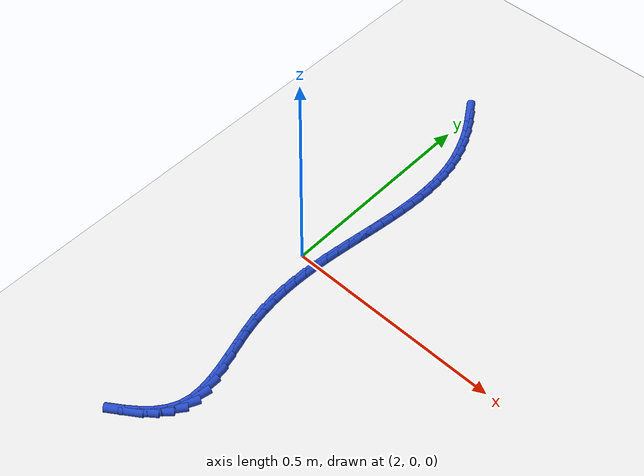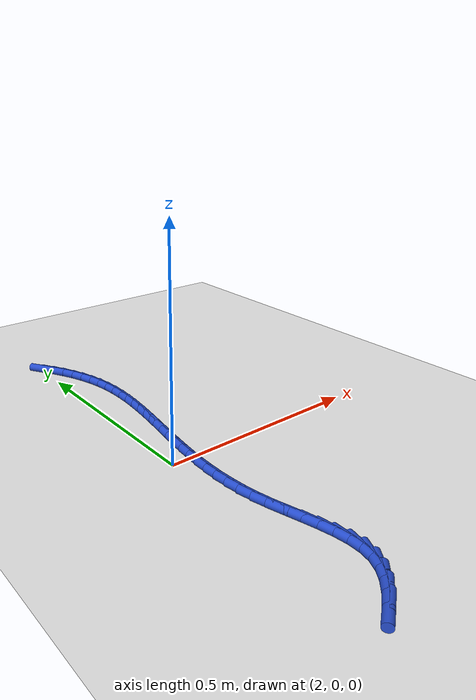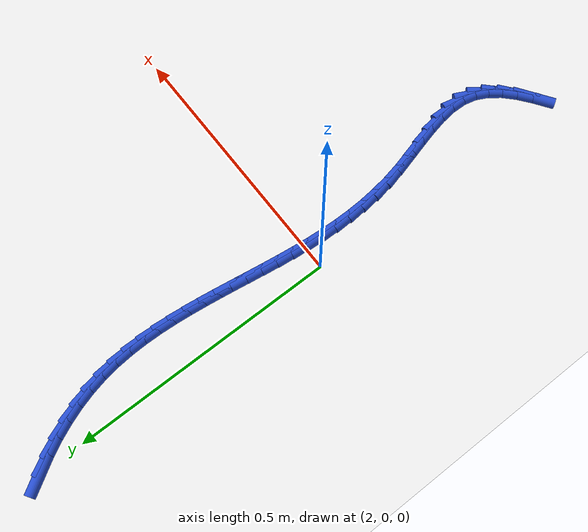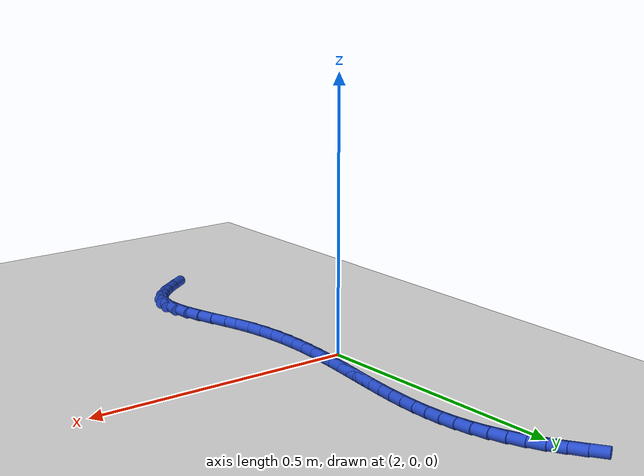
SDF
<sdf version="1.6">
 <world name="default">
  <model name="ground_plane">
   <static>1</static>
   <link name="link">
    <collision name="collision">
     <geometry><plane><normal>0 0 1</normal><size>100 100</size></plane></geometry>
     <surface><friction><ode><mu>100</mu><mu2>50</mu2></ode></friction></surface>
    </collision>
    <visual name="visual">
     <cast_shadows>0</cast_shadows>
     <geometry><plane><normal>0 0 1</normal><size>100 100</size></plane></geometry>
     <material>
      <script><uri>file://media/materials/scripts/gazebo.material</uri><name>Gazebo/WhiteGlow</name></script>
     </material>
    </visual>
   </link>
  </model>
  <model name="line">
   <link name="link_95">
    <pose>2.000764681618579 0.5782696499461899 0.01 0 1.57 -1.0054330236691191</pose>
    <collision name="collision">
     <geometry><cylinder><radius>0.01</radius><length>0.08</length></cylinder></geometry>
    </collision>
    <visual name="visual">
     <material>
      <script><name>Gazebo/Blue</name><uri>file://media/materials/scripts/gazebo.material</uri></script>
     </material>
     <geometry><cylinder><radius>0.01</radius><length>0.08</length></cylinder></geometry>
    </visual>
   </link>
   <link name="link_96">
    <pose>2.017391646981406 0.5520625986762362 0.01 0 1.57 -1.0681822019862075</pose>
    <collision name="collision">
     <geometry><cylinder><radius>0.01</radius><length>0.08</length></cylinder></geometry>
    </collision>
    <visual name="visual">
     <material>
      <script><name>Gazebo/Blue</name><uri>file://media/materials/scripts/gazebo.material</uri></script>
     </material>
     <geometry><cylinder><radius>0.01</radius><length>0.08</length></cylinder></geometry>
    </visual>
   </link>
   <link name="link_97">
    <pose>2.032307787823024 0.524927623253649 0.01 0 1.57 -1.132688310050768</pose>
    <collision name="collision">
     <geometry><cylinder><radius>0.01</radius><length>0.08</length></cylinder></geometry>
    </collision>
    <visual name="visual">
     <material>
      <script><name>Gazebo/Blue</name><uri>file://media/materials/scripts/gazebo.material</uri></script>
     </material>
     <geometry><cylinder><radius>0.01</radius><length>0.08</length></cylinder></geometry>
    </visual>
   </link>
   <link name="link_98">
    <pose>2.04539551418078 0.4969905282749667 0.01 0 1.57 -1.1994714623951979</pose>
    <collision name="collision">
     <geometry><cylinder><radius>0.01</radius><length>0.08</length></cylinder></geometry>
    </collision>
    <visual name="visual">
     <material>
      <script><name>Gazebo/Blue</name><uri>file://media/materials/scripts/gazebo.material</uri></script>
     </material>
     <geometry><cylinder><radius>0.01</radius><length>0.08</length></cylinder></geometry>
    </visual>
   </link>
   <link name="link_99">
    <pose>2.0565372360920193 0.46837711833672785 0.01 0 1.57 -1.2690238536816874</pose>
    <collision name="collision">
     <geometry><cylinder><radius>0.01</radius><length>0.08</length></cylinder></geometry>
    </collision>
    <visual name="visual">
     <material>
      <script><name>Gazebo/Blue</name><uri>file://media/materials/scripts/gazebo.material</uri></script>
     </material>
     <geometry><cylinder><radius>0.01</radius><length>0.08</length></cylinder></geometry>
    </visual>
   </link>
   <link name="link_100">
    <pose>2.06561536359409 0.43921319803547226 0.01 0 1.57 -1.341790618742854</pose>
    <collision name="collision">
     <geometry><cylinder><radius>0.01</radius><length>0.08</length></cylinder></geometry>
    </collision>
    <visual name="visual">
     <material>
      <script><name>Gazebo/Blue</name><uri>file://media/materials/scripts/gazebo.material</uri></script>
     </material>
     <geometry><cylinder><radius>0.01</radius><length>0.08</length></cylinder></geometry>
    </visual>
   </link>
   <link name="link_101">
    <pose>2.0725123189964334 0.4096245702139765 0.01 0 1.57 -1.4157767461493214</pose>
    <collision name="collision">
     <geometry><cylinder><radius>0.01</radius><length>0.08</length></cylinder></geometry>
    </collision>
    <visual name="visual">
     <material>
      <script><name>Gazebo/Blue</name><uri>file://media/materials/scripts/gazebo.material</uri></script>
     </material>
     <geometry><cylinder><radius>0.01</radius><length>0.08</length></cylinder></geometry>
    </visual>
   </link>
   <link name="link_102">
    <pose>2.0771845994854576 0.3797264519358604 0.01 0 1.57 -1.4829599727988882</pose>
    <collision name="collision">
     <geometry><cylinder><radius>0.01</radius><length>0.08</length></cylinder></geometry>
    </collision>
    <visual name="visual">
     <material>
      <script><name>Gazebo/Blue</name><uri>file://media/materials/scripts/gazebo.material</uri></script>
     </material>
     <geometry><cylinder><radius>0.01</radius><length>0.08</length></cylinder></geometry>
    </visual>
   </link>
   <link name="link_103">
    <pose>2.07983775845346 0.349598468521613 0.01 0 1.57 -1.5413560294564155</pose>
    <collision name="collision">
     <geometry><cylinder><radius>0.01</radius><length>0.08</length></cylinder></geometry>
    </collision>
    <visual name="visual">
     <material>
      <script><name>Gazebo/Blue</name><uri>file://media/materials/scripts/gazebo.material</uri></script>
     </material>
     <geometry><cylinder><radius>0.01</radius><length>0.08</length></cylinder></geometry>
    </visual>
   </link>
   <link name="link_104">
    <pose>2.0807296360169696 0.31931277318055395 0.01 0 1.57 1.550662779243528</pose>
    <collision name="collision">
     <geometry><cylinder><radius>0.01</radius><length>0.08</length></cylinder></geometry>
    </collision>
    <visual name="visual">
     <material>
      <script><name>Gazebo/Blue</name><uri>file://media/materials/scripts/gazebo.material</uri></script>
     </material>
     <geometry><cylinder><radius>0.01</radius><length>0.08</length></cylinder></geometry>
    </visual>
   </link>
   <link name="link_105">
    <pose>2.080118072292517 0.2889415191220017 0.01 0 1.57 1.5097504772974384</pose>
    <collision name="collision">
     <geometry><cylinder><radius>0.01</radius><length>0.08</length></cylinder></geometry>
    </collision>
    <visual name="visual">
     <material>
      <script><name>Gazebo/Blue</name><uri>file://media/materials/scripts/gazebo.material</uri></script>
     </material>
     <geometry><cylinder><radius>0.01</radius><length>0.08</length></cylinder></geometry>
    </visual>
   </link>
   <link name="link_106">
    <pose>2.0782609073966323 0.25855685955527624 0.01 0 1.57 1.4772583637839154</pose>
    <collision name="collision">
     <geometry><cylinder><radius>0.01</radius><length>0.08</length></cylinder></geometry>
    </collision>
    <visual name="visual">
     <material>
      <script><name>Gazebo/Blue</name><uri>file://media/materials/scripts/gazebo.material</uri></script>
     </material>
     <geometry><cylinder><radius>0.01</radius><length>0.08</length></cylinder></geometry>
    </visual>
   </link>
   <link name="link_107">
    <pose>2.075415981445846 0.22823094768969612 0.01 0 1.57 1.4529525562894767</pose>
    <collision name="collision">
     <geometry><cylinder><radius>0.01</radius><length>0.08</length></cylinder></geometry>
    </collision>
    <visual name="visual">
     <material>
      <script><name>Gazebo/Blue</name><uri>file://media/materials/scripts/gazebo.material</uri></script>
     </material>
     <geometry><cylinder><radius>0.01</radius><length>0.08</length></cylinder></geometry>
    </visual>
   </link>
   <link name="link_108">
    <pose>2.071841121446437 0.1980359154651476 0.01 0 1.57 1.4362614068853041</pose>
    <collision name="collision">
     <geometry><cylinder><radius>0.01</radius><length>0.08</length></cylinder></geometry>
    </collision>
    <visual name="visual">
     <material>
      <script><name>Gazebo/Blue</name><uri>file://media/materials/scripts/gazebo.material</uri></script>
     </material>
     <geometry><cylinder><radius>0.01</radius><length>0.08</length></cylinder></geometry>
    </visual>
   </link>
   <link name="link_109">
    <pose>2.067778100720609 0.1680178501050017 0.01 0 1.57 1.4259706758542323</pose>
    <collision name="collision">
     <geometry><cylinder><radius>0.01</radius><length>0.08</length></cylinder></geometry>
    </collision>
    <visual name="visual">
     <material>
      <script><name>Gazebo/Blue</name><uri>file://media/materials/scripts/gazebo.material</uri></script>
     </material>
     <geometry><cylinder><radius>0.01</radius><length>0.08</length></cylinder></geometry>
    </visual>
   </link>
   <link name="link_110">
    <pose>2.0634214059836387 0.13814612334062445 0.01 0 1.57 1.4219380950766427</pose>
    <collision name="collision">
     <geometry><cylinder><radius>0.01</radius><length>0.08</length></cylinder></geometry>
    </collision>
    <visual name="visual">
     <material>
      <script><name>Gazebo/Blue</name><uri>file://media/materials/scripts/gazebo.material</uri></script>
     </material>
     <geometry><cylinder><radius>0.01</radius><length>0.08</length></cylinder></geometry>
    </visual>
   </link>
   <link name="link_111">
    <pose>2.058956860721695 0.10837605210168806 0.01 0 1.57 1.4242241229090606</pose>
    <collision name="collision">
     <geometry><cylinder><radius>0.01</radius><length>0.08</length></cylinder></geometry>
    </collision>
    <visual name="visual">
     <material>
      <script><name>Gazebo/Blue</name><uri>file://media/materials/scripts/gazebo.material</uri></script>
     </material>
     <geometry><cylinder><radius>0.01</radius><length>0.08</length></cylinder></geometry>
    </visual>
   </link>
   <link name="link_112">
    <pose>2.054570288420949 0.07866295331786333 0.01 0 1.57 1.4328674851461751</pose>
    <collision name="collision">
     <geometry><cylinder><radius>0.01</radius><length>0.08</length></cylinder></geometry>
    </collision>
    <visual name="visual">
     <material>
      <script><name>Gazebo/Blue</name><uri>file://media/materials/scripts/gazebo.material</uri></script>
     </material>
     <geometry><cylinder><radius>0.01</radius><length>0.08</length></cylinder></geometry>
    </visual>
   </link>
   <link name="link_113">
    <pose>2.0504475125675694 0.04896214391882244 0.01 0 1.57 1.4478819103793228</pose>
    <collision name="collision">
     <geometry><cylinder><radius>0.01</radius><length>0.08</length></cylinder></geometry>
    </collision>
    <visual name="visual">
     <material>
      <script><name>Gazebo/Blue</name><uri>file://media/materials/scripts/gazebo.material</uri></script>
     </material>
     <geometry><cylinder><radius>0.01</radius><length>0.08</length></cylinder></geometry>
    </visual>
   </link>
   <link name="link_114">
    <pose>2.0467743566477288 0.01922894083423613 0.01 0 1.57 1.4692453487086157</pose>
    <collision name="collision">
     <geometry><cylinder><radius>0.01</radius><length>0.08</length></cylinder></geometry>
    </collision>
    <visual name="visual">
     <material>
      <script><name>Gazebo/Blue</name><uri>file://media/materials/scripts/gazebo.material</uri></script>
     </material>
     <geometry><cylinder><radius>0.01</radius><length>0.08</length></cylinder></geometry>
    </visual>
   </link>
   <link name="link_115">
    <pose>2.0437366441475953 -0.010581339006223309 0.01 0 1.57 1.4968819609788184</pose>
    <collision name="collision">
     <geometry><cylinder><radius>0.01</radius><length>0.08</length></cylinder></geometry>
    </collision>
    <visual name="visual">
     <material>
      <script><name>Gazebo/Blue</name><uri>file://media/materials/scripts/gazebo.material</uri></script>
     </material>
     <geometry><cylinder><radius>0.01</radius><length>0.08</length></cylinder></geometry>
    </visual>
   </link>
   <link name="link_116">
    <pose>2.0415201985533398 -0.040513378672884764 0.01 0 1.57 1.5306379891142663</pose>
    <collision name="collision">
     <geometry><cylinder><radius>0.01</radius><length>0.08</length></cylinder></geometry>
    </collision>
    <visual name="visual">
     <material>
      <script><name>Gazebo/Blue</name><uri>file://media/materials/scripts/gazebo.material</uri></script>
     </material>
     <geometry><cylinder><radius>0.01</radius><length>0.08</length></cylinder></geometry>
    </visual>
   </link>
   <link name="link_117">
    <pose>2.0403108433511328 -0.07061186123607754 0.01 0 1.57 1.5702538809114104</pose>
    <collision name="collision">
     <geometry><cylinder><radius>0.01</radius><length>0.08</length></cylinder></geometry>
    </collision>
    <visual name="visual">
     <material>
      <script><name>Gazebo/Blue</name><uri>file://media/materials/scripts/gazebo.material</uri></script>
     </material>
     <geometry><cylinder><radius>0.01</radius><length>0.08</length></cylinder></geometry>
    </visual>
   </link>
   <link name="link_118">
    <pose>2.040294402027143 -0.10092146976612854 0.01 0 1.57 -1.5262559550832302</pose>
    <collision name="collision">
     <geometry><cylinder><radius>0.01</radius><length>0.08</length></cylinder></geometry>
    </collision>
    <visual name="visual">
     <material>
      <script><name>Gazebo/Blue</name><uri>file://media/materials/scripts/gazebo.material</uri></script>
     </material>
     <geometry><cylinder><radius>0.01</radius><length>0.08</length></cylinder></geometry>
    </visual>
   </link>
   <link name="link_119">
    <pose>2.0416566980675426 -0.1314868873333671 0.01 0 1.57 -1.4762541145478574</pose>
    <collision name="collision">
     <geometry><cylinder><radius>0.01</radius><length>0.08</length></cylinder></geometry>
    </collision>
    <visual name="visual">
     <material>
      <script><name>Gazebo/Blue</name><uri>file://media/materials/scripts/gazebo.material</uri></script>
     </material>
     <geometry><cylinder><radius>0.01</radius><length>0.08</length></cylinder></geometry>
    </visual>
   </link>
   <link name="link_120">
    <pose>2.0445835549585007 -0.16235279700812172 0.01 0 1.57 -1.4220449291729766</pose>
    <collision name="collision">
     <geometry><cylinder><radius>0.01</radius><length>0.08</length></cylinder></geometry>
    </collision>
    <visual name="visual">
     <material>
      <script><name>Gazebo/Blue</name><uri>file://media/materials/scripts/gazebo.material</uri></script>
     </material>
     <geometry><cylinder><radius>0.01</radius><length>0.08</length></cylinder></geometry>
    </visual>
   </link>
   <link name="link_121">
    <pose>2.0492607961861866 -0.1935638818607208 0.01 0 1.57 -1.364666108945705</pose>
    <collision name="collision">
     <geometry><cylinder><radius>0.01</radius><length>0.08</length></cylinder></geometry>
    </collision>
    <visual name="visual">
     <material>
      <script><name>Gazebo/Blue</name><uri>file://media/materials/scripts/gazebo.material</uri></script>
     </material>
     <geometry><cylinder><radius>0.01</radius><length>0.08</length></cylinder></geometry>
    </visual>
   </link>
   <link name="link_122">
    <pose>2.055868132249008 -0.22516278474010495 0.01 0 1.57 -1.317535533192561</pose>
    <collision name="collision">
     <geometry><cylinder><radius>0.01</radius><length>0.08</length></cylinder></geometry>
    </collision>
    <visual name="visual">
     <material>
      <script><name>Gazebo/Blue</name><uri>file://media/materials/scripts/gazebo.material</uri></script>
     </material>
     <geometry><cylinder><radius>0.01</radius><length>0.08</length></cylinder></geometry>
    </visual>
   </link>
   <link name="link_123">
    <pose>2.064117509292276 -0.25703603124536134 0.01 0 1.57 -1.3001923532580206</pose>
    <collision name="collision">
     <geometry><cylinder><radius>0.01</radius><length>0.08</length></cylinder></geometry>
    </collision>
    <visual name="visual">
     <material>
      <script><name>Gazebo/Blue</name><uri>file://media/materials/scripts/gazebo.material</uri></script>
     </material>
     <geometry><cylinder><radius>0.01</radius><length>0.08</length></cylinder></geometry>
    </visual>
   </link>
   <link name="link_124">
    <pose>2.0729309049102755 -0.2888064934567955 0.01 0 1.57 -1.3136051114015004</pose>
    <collision name="collision">
     <geometry><cylinder><radius>0.01</radius><length>0.08</length></cylinder></geometry>
    </collision>
    <visual name="visual">
     <material>
      <script><name>Gazebo/Blue</name><uri>file://media/materials/scripts/gazebo.material</uri></script>
     </material>
     <geometry><cylinder><radius>0.01</radius><length>0.08</length></cylinder></geometry>
    </visual>
   </link>
   <link name="link_125">
    <pose>2.0811541422194577 -0.32007162675169765 0.01 0 1.57 -1.3605290913962547</pose>
    <collision name="collision">
     <geometry><cylinder><radius>0.01</radius><length>0.08</length></cylinder></geometry>
    </collision>
    <visual name="visual">
     <material>
      <script><name>Gazebo/Blue</name><uri>file://media/materials/scripts/gazebo.material</uri></script>
     </material>
     <geometry><cylinder><radius>0.01</radius><length>0.08</length></cylinder></geometry>
    </visual>
   </link>
   <link name="link_126">
    <pose>2.0876330443362736 -0.3504288865073591 0.01 0 1.57 -1.4481523392725548</pose>
    <collision name="collision">
     <geometry><cylinder><radius>0.01</radius><length>0.08</length></cylinder></geometry>
    </collision>
    <visual name="visual">
     <material>
      <script><name>Gazebo/Blue</name><uri>file://media/materials/scripts/gazebo.material</uri></script>
     </material>
     <geometry><cylinder><radius>0.01</radius><length>0.08</length></cylinder></geometry>
    </visual>
   </link>
   <link name="link_127">
    <pose>2.091213434377173 -0.37947572810106833 0.01 0 1.57 1.553519162177245</pose>
    <collision name="collision">
     <geometry><cylinder><radius>0.01</radius><length>0.08</length></cylinder></geometry>
    </collision>
    <visual name="visual">
     <material>
      <script><name>Gazebo/Blue</name><uri>file://media/materials/scripts/gazebo.material</uri></script>
     </material>
     <geometry><cylinder><radius>0.01</radius><length>0.08</length></cylinder></geometry>
    </visual>
   </link>
   <link name="link_128">
    <pose>2.090741135458607 -0.4068096069101165 0.01 0 1.57 1.3495672978982833</pose>
    <collision name="collision">
     <geometry><cylinder><radius>0.01</radius><length>0.08</length></cylinder></geometry>
    </collision>
    <visual name="visual">
     <material>
      <script><name>Gazebo/Blue</name><uri>file://media/materials/scripts/gazebo.material</uri></script>
     </material>
     <geometry><cylinder><radius>0.01</radius><length>0.08</length></cylinder></geometry>
    </visual>
   </link>
   <link name="link_129">
    <pose>2.085068660768363 -0.43203066433934323 0.01 0 1.57 1.111623247486375</pose>
    <collision name="collision">
     <geometry><cylinder><radius>0.01</radius><length>0.08</length></cylinder></geometry>
    </collision>
    <visual name="visual">
     <material>
      <script><name>Gazebo/Blue</name><uri>file://media/materials/scripts/gazebo.material</uri></script>
     </material>
     <geometry><cylinder><radius>0.01</radius><length>0.08</length></cylinder></geometry>
    </visual>
   </link>
   <link name="link_130">
    <pose>2.0737099111350648 -0.4550045853632917 0.01 0 1.57 0.9119829034573499</pose>
    <collision name="collision">
     <geometry><cylinder><radius>0.01</radius><length>0.08</length></cylinder></geometry>
    </collision>
    <visual name="visual">
     <material>
      <script><name>Gazebo/Blue</name><uri>file://media/materials/scripts/gazebo.material</uri></script>
     </material>
     <geometry><cylinder><radius>0.01</radius><length>0.08</length></cylinder></geometry>
    </visual>
   </link>
   <link name="link_131">
    <pose>2.0573904716657885 -0.4760835396574369 0.01 0 1.57 0.7644879209392532</pose>
    <collision name="collision">
     <geometry><cylinder><radius>0.01</radius><length>0.08</length></cylinder></geometry>
    </collision>
    <visual name="visual">
     <material>
      <script><name>Gazebo/Blue</name><uri>file://media/materials/scripts/gazebo.material</uri></script>
     </material>
     <geometry><cylinder><radius>0.01</radius><length>0.08</length></cylinder></geometry>
    </visual>
   </link>
   <link name="link_132">
    <pose>2.0369654892636 -0.4956717152593748 0.01 0 1.57 0.6633392524089535</pose>
    <collision name="collision">
     <geometry><cylinder><radius>0.01</radius><length>0.08</length></cylinder></geometry>
    </collision>
    <visual name="visual">
     <material>
      <script><name>Gazebo/Blue</name><uri>file://media/materials/scripts/gazebo.material</uri></script>
     </material>
     <geometry><cylinder><radius>0.01</radius><length>0.08</length></cylinder></geometry>
    </visual>
   </link>
   <link name="link_133">
    <pose>2.0132901108315666 -0.5141733002067036 0.01 0 1.57 0.5995636959378524</pose>
    <collision name="collision">
     <geometry><cylinder><radius>0.01</radius><length>0.08</length></cylinder></geometry>
    </collision>
    <visual name="visual">
     <material>
      <script><name>Gazebo/Blue</name><uri>file://media/materials/scripts/gazebo.material</uri></script>
     </material>
     <geometry><cylinder><radius>0.01</radius><length>0.08</length></cylinder></geometry>
    </visual>
   </link>
  </model>
 </world>
</sdf>
